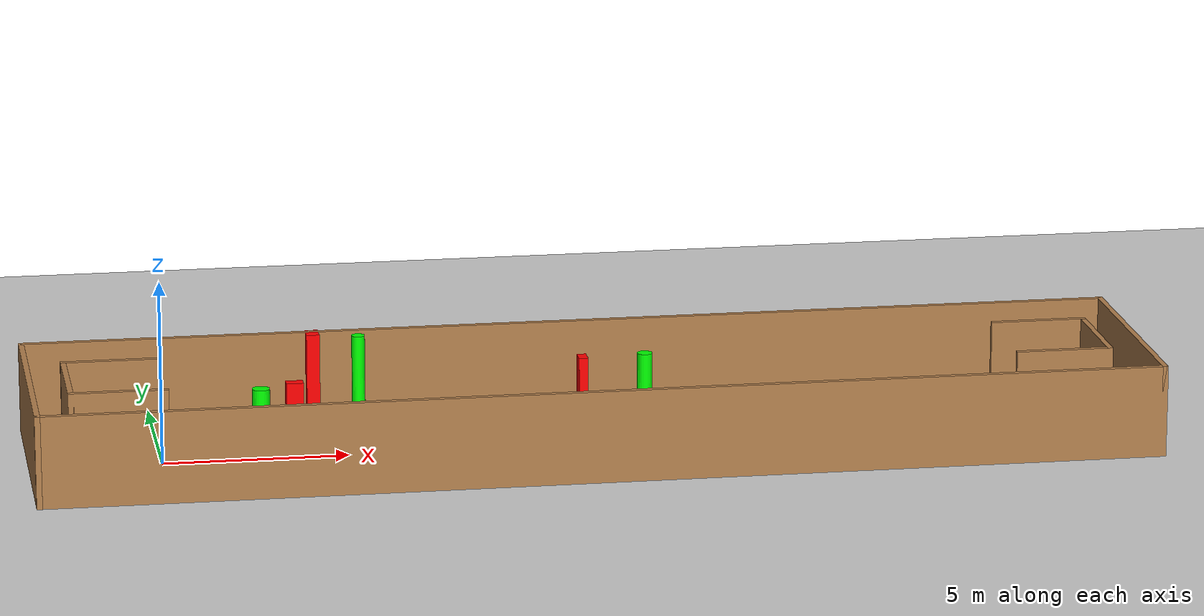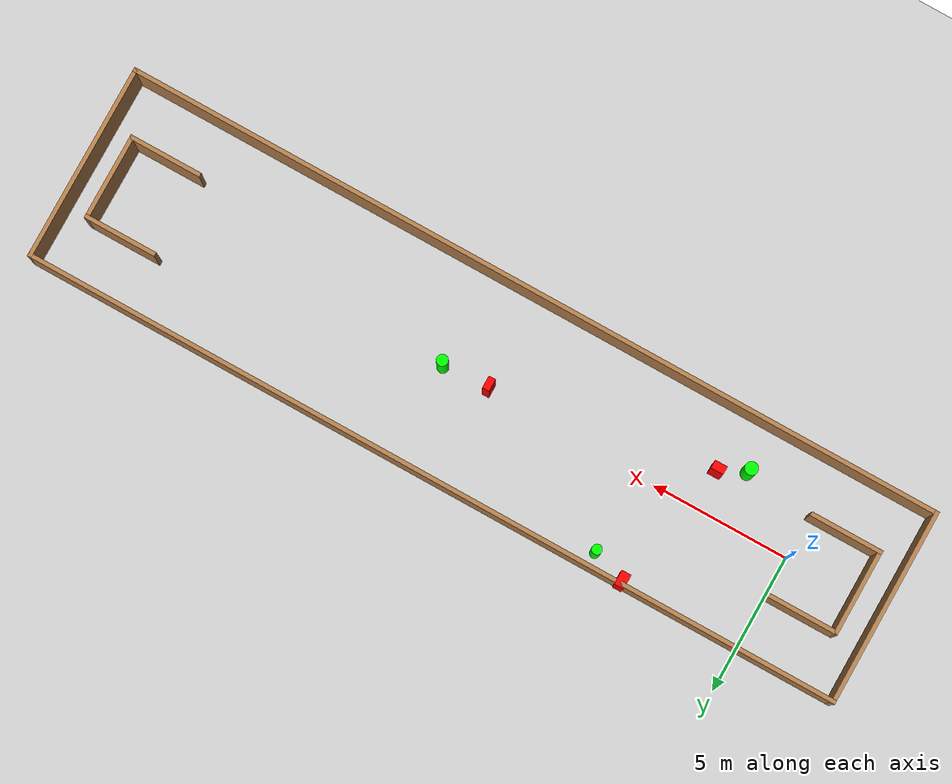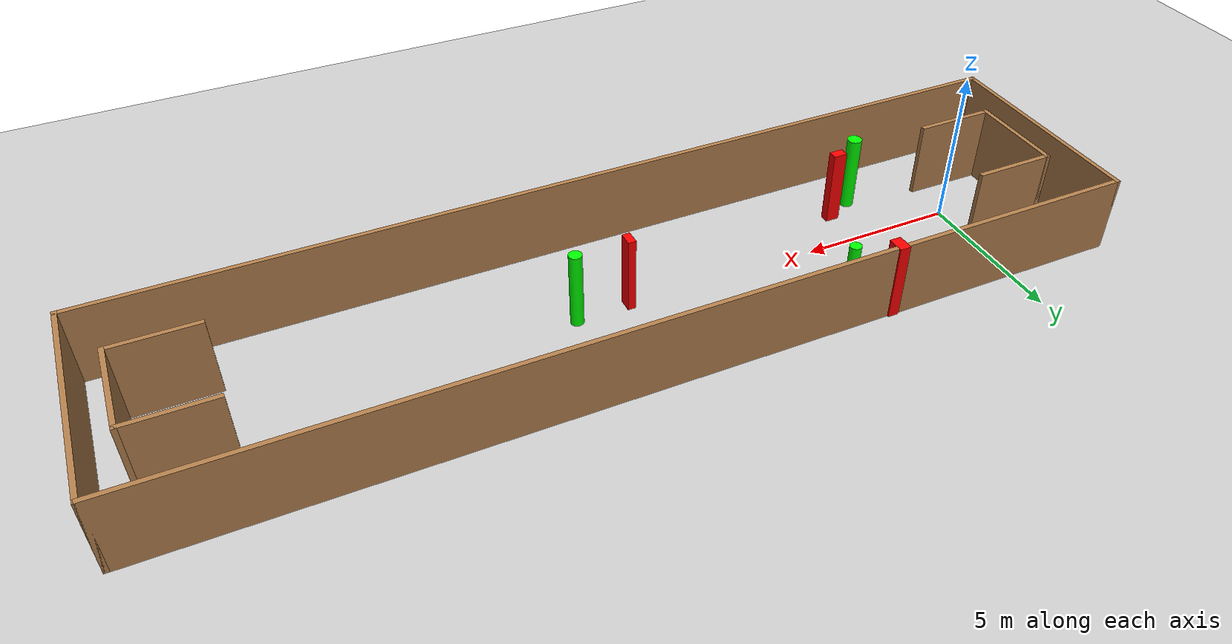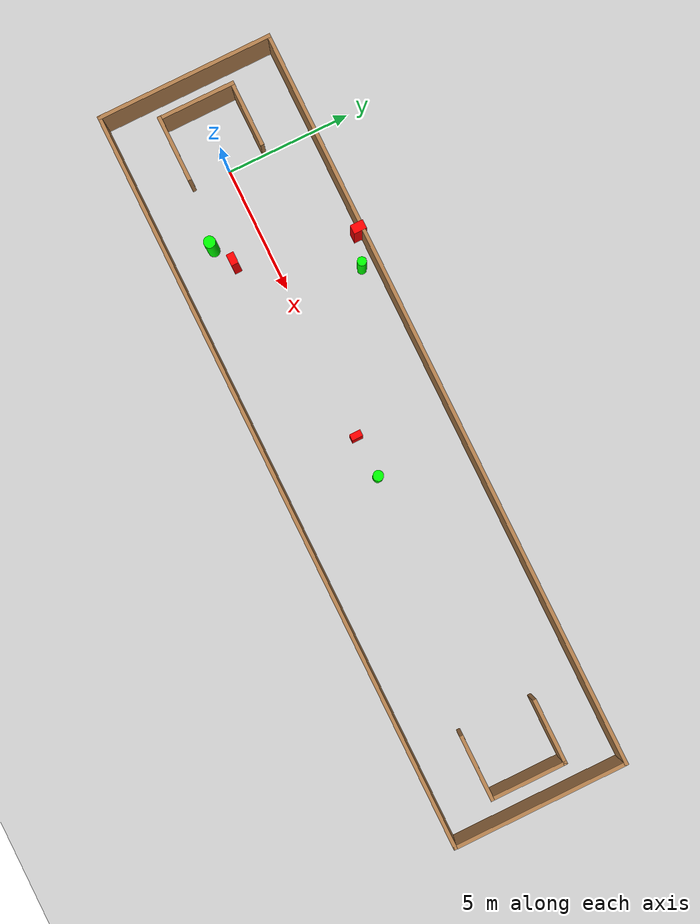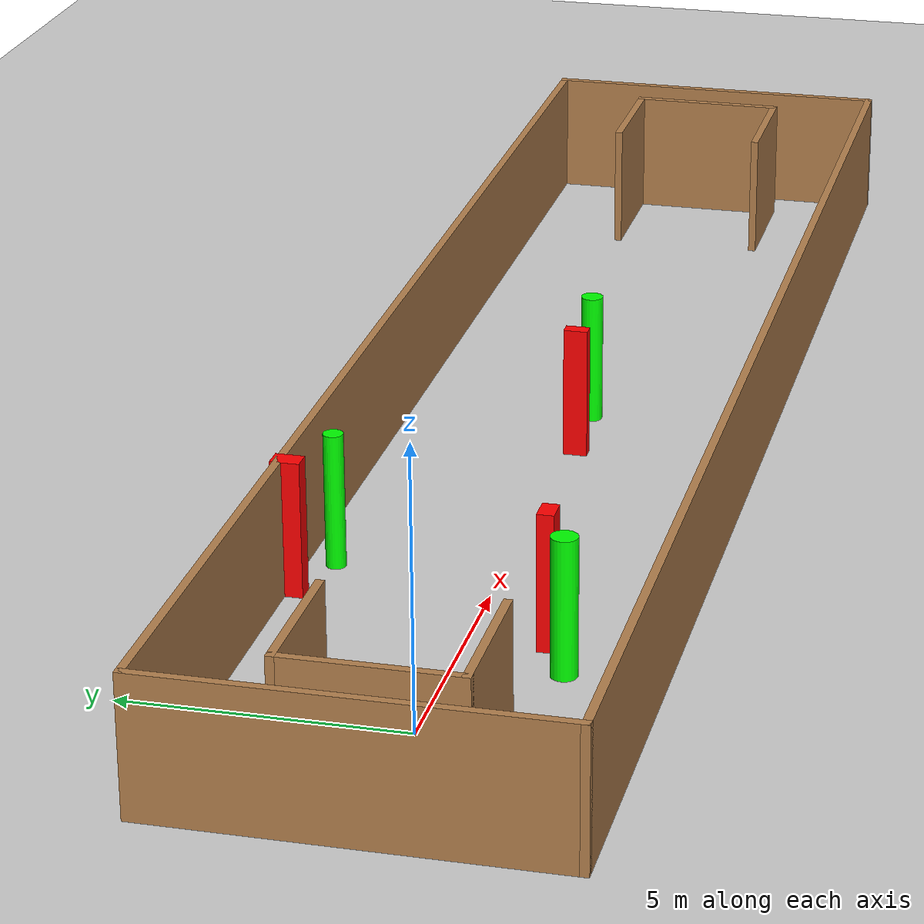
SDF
<sdf version="1.7">
 <world name="default">
  <light name="sun" type="directional">
   <pose>0 0 10 0 -0 0</pose>
   <diffuse>0.8 0.8 0.8 1</diffuse>
   <specular>0.2 0.2 0.2 1</specular>
   <attenuation>
    <range>1000</range>
    <constant>0.9</constant>
    <linear>0.01</linear>
    <quadratic>0.001</quadratic>
   </attenuation>
   <direction>-0.5 0.1 -0.9</direction>
   <spot><inner_angle>0</inner_angle><outer_angle>0</outer_angle><falloff>0</falloff></spot>
  </light>
  <model name="ground_plane">
   <static>1</static>
   <link name="link">
    <collision name="collision">
     <geometry><plane><normal>0 0 1</normal><size>100 100</size></plane></geometry>
     <surface>
      <contact><collide_bitmask>65535</collide_bitmask></contact>
      <friction><ode><mu>100</mu><mu2>50</mu2></ode></friction>
     </surface>
    </collision>
    <visual name="visual">
     <cast_shadows>0</cast_shadows>
     <geometry><plane><normal>0 0 1</normal><size>100 100</size></plane></geometry>
     <material>
      <script><uri>file://media/materials/scripts/gazebo.material</uri><name>Gazebo/Grey</name></script>
     </material>
    </visual>
   </link>
  </model>
  <gravity>0 0 -9.8</gravity>
  <magnetic_field>6e-06 2.3e-05 -4.2e-05</magnetic_field>
  <atmosphere type="adiabatic"/>
  <physics type="ode">
   <max_step_size>0.001</max_step_size>
   <real_time_factor>1</real_time_factor>
   <real_time_update_rate>1000</real_time_update_rate>
  </physics>
  <scene><ambient>0.4 0.4 0.4 1</ambient><background>0.7 0.7 0.7 1</background><shadows>1</shadows></scene>
  <spherical_coordinates>
   <surface_model>EARTH_WGS84</surface_model>
   <latitude_deg>0</latitude_deg>
   <longitude_deg>0</longitude_deg>
   <elevation>0</elevation>
   <heading_deg>0</heading_deg>
  </spherical_coordinates>
  <model name="my_base_walls">
   <link name="Wall_0">
    <collision name="Wall_0_Collision">
     <geometry><box><size>7.15 0.15 2.5</size></box></geometry>
     <pose>0 0 1.25 0 -0 0</pose>
    </collision>
    <visual name="Wall_0_Visual">
     <pose>0 0 1.25 0 -0 0</pose>
     <geometry><box><size>7.15 0.15 2.5</size></box></geometry>
     <material>
      <script><uri>file://media/materials/scripts/gazebo.material</uri><name>Gazebo/Wood</name></script>
      <ambient>1 1 1 1</ambient>
     </material>
     <meta><layer>0</layer></meta>
    </visual>
    <pose>-15 0 0 0 -0 1.5708</pose>
   </link>
   <link name="Wall_10">
    <collision name="Wall_10_Collision">
     <geometry><box><size>2.65 0.15 2.5</size></box></geometry>
     <pose>0 0 1.25 0 -0 0</pose>
    </collision>
    <visual name="Wall_10_Visual">
     <pose>0 0 1.25 0 -0 0</pose>
     <geometry><box><size>2.65 0.15 2.5</size></box></geometry>
     <material>
      <script><uri>file://media/materials/scripts/gazebo.material</uri><name>Gazebo/Wood</name></script>
      <ambient>1 1 1 1</ambient>
     </material>
     <meta><layer>0</layer></meta>
    </visual>
    <pose>-12.75 -1.5 0 0 -0 0</pose>
   </link>
   <link name="Wall_12">
    <collision name="Wall_12_Collision">
     <geometry><box><size>2.65 0.15 2.5</size></box></geometry>
     <pose>0 0 1.25 0 -0 0</pose>
    </collision>
    <visual name="Wall_12_Visual">
     <pose>0 0 1.25 0 -0 0</pose>
     <geometry><box><size>2.65 0.15 2.5</size></box></geometry>
     <material>
      <script><uri>file://media/materials/scripts/gazebo.material</uri><name>Gazebo/Wood</name></script>
      <ambient>1 1 1 1</ambient>
     </material>
     <meta><layer>0</layer></meta>
    </visual>
    <pose>-12.75 1.5 0 0 -0 0</pose>
   </link>
   <link name="Wall_14">
    <collision name="Wall_14_Collision">
     <geometry><box><size>3.15 0.15 2.5</size></box></geometry>
     <pose>0 0 1.25 0 -0 0</pose>
    </collision>
    <visual name="Wall_14_Visual">
     <pose>0 0 1.25 0 -0 0</pose>
     <geometry><box><size>3.15 0.15 2.5</size></box></geometry>
     <material>
      <script><uri>file://media/materials/scripts/gazebo.material</uri><name>Gazebo/Wood</name></script>
      <ambient>1 1 1 1</ambient>
     </material>
     <meta><layer>0</layer></meta>
    </visual>
    <pose>14 0 0 0 -0 -1.5708</pose>
   </link>
   <link name="Wall_15">
    <collision name="Wall_15_Collision">
     <geometry><box><size>2.65 0.15 2.5</size></box></geometry>
     <pose>0 0 1.25 0 -0 0</pose>
    </collision>
    <visual name="Wall_15_Visual">
     <pose>0 0 1.25 0 -0 0</pose>
     <geometry><box><size>2.65 0.15 2.5</size></box></geometry>
     <material>
      <script><uri>file://media/materials/scripts/gazebo.material</uri><name>Gazebo/Wood</name></script>
      <ambient>1 1 1 1</ambient>
     </material>
     <meta><layer>0</layer></meta>
    </visual>
    <pose>12.75 -1.5 0 0 -0 3.14159</pose>
   </link>
   <link name="Wall_17">
    <collision name="Wall_17_Collision">
     <geometry><box><size>2.65 0.15 2.5</size></box></geometry>
     <pose>0 0 1.25 0 -0 0</pose>
    </collision>
    <visual name="Wall_17_Visual">
     <pose>0 0 1.25 0 -0 0</pose>
     <geometry><box><size>2.65 0.15 2.5</size></box></geometry>
     <material>
      <script><uri>file://media/materials/scripts/gazebo.material</uri><name>Gazebo/Wood</name></script>
      <ambient>1 1 1 1</ambient>
     </material>
     <meta><layer>0</layer></meta>
    </visual>
    <pose>12.75 1.5 0 0 -0 3.14159</pose>
   </link>
   <link name="Wall_2">
    <collision name="Wall_2_Collision">
     <geometry><box><size>30.15 0.15 2.5</size></box></geometry>
     <pose>0 0 1.25 0 -0 0</pose>
    </collision>
    <visual name="Wall_2_Visual">
     <pose>0 0 1.25 0 -0 0</pose>
     <geometry><box><size>30.15 0.15 2.5</size></box></geometry>
     <material>
      <script><uri>file://media/materials/scripts/gazebo.material</uri><name>Gazebo/Wood</name></script>
      <ambient>1 1 1 1</ambient>
     </material>
     <meta><layer>0</layer></meta>
    </visual>
    <pose>-0 -3.5 0 0 -0 0</pose>
   </link>
   <link name="Wall_4">
    <collision name="Wall_4_Collision">
     <geometry><box><size>30.15 0.15 2.5</size></box></geometry>
     <pose>0 0 1.25 0 -0 0</pose>
    </collision>
    <visual name="Wall_4_Visual">
     <pose>0 0 1.25 0 -0 0</pose>
     <geometry><box><size>30.15 0.15 2.5</size></box></geometry>
     <material>
      <script><uri>file://media/materials/scripts/gazebo.material</uri><name>Gazebo/Wood</name></script>
      <ambient>1 1 1 1</ambient>
     </material>
     <meta><layer>0</layer></meta>
    </visual>
    <pose>-0 3.5 0 0 -0 0</pose>
   </link>
   <link name="Wall_6">
    <collision name="Wall_6_Collision">
     <geometry><box><size>7.15 0.15 2.5</size></box></geometry>
     <pose>0 0 1.25 0 -0 0</pose>
    </collision>
    <visual name="Wall_6_Visual">
     <pose>0 0 1.25 0 -0 0</pose>
     <geometry><box><size>7.15 0.15 2.5</size></box></geometry>
     <material>
      <script><uri>file://media/materials/scripts/gazebo.material</uri><name>Gazebo/Wood</name></script>
      <ambient>1 1 1 1</ambient>
     </material>
     <meta><layer>0</layer></meta>
    </visual>
    <pose>15 0 0 0 -0 -1.5708</pose>
   </link>
   <link name="Wall_9">
    <collision name="Wall_9_Collision">
     <geometry><box><size>3.15 0.15 2.5</size></box></geometry>
     <pose>0 0 1.25 0 -0 0</pose>
    </collision>
    <visual name="Wall_9_Visual">
     <pose>0 0 1.25 0 -0 0</pose>
     <geometry><box><size>3.15 0.15 2.5</size></box></geometry>
     <material>
      <script><uri>file://media/materials/scripts/gazebo.material</uri><name>Gazebo/Wood</name></script>
      <ambient>1 1 1 1</ambient>
     </material>
     <meta><layer>0</layer></meta>
    </visual>
    <pose>-14 0 0 0 -0 -1.5708</pose>
   </link>
   <static>1</static>
   <pose>11.5 0 0 0 -0 0</pose>
  </model>
  <model name="cylinder1">
   <static>1</static>
   <link name="link">
    <inertial>
     <mass>1</mass>
     <inertia><ixx>0.5</ixx><ixy>0</ixy><ixz>0</ixz><iyy>0.5</iyy><iyz>0</iyz><izz>1</izz></inertia>
    </inertial>
    <collision name="collision">
     <geometry><cylinder><radius>0.23324532618084517</radius><length>2.5</length></cylinder></geometry>
    </collision>
    <visual name="visual">
     <geometry><cylinder><radius>0.23324532618084517</radius><length>2.5</length></cylinder></geometry>
     <material>
      <ambient>0 1 0 1</ambient>
      <diffuse>0 1 0 1</diffuse>
      <specular>0.1 0.1 0.1 1</specular>
      <emissive>0 0 0 0</emissive>
     </material>
    </visual>
   </link>
   <pose>2.4737369206111985 -1.8463153258388796 1.25 0 0 0</pose>
  </model>
  <model name="cylinder2">
   <static>1</static>
   <link name="link">
    <inertial>
     <mass>1</mass>
     <inertia><ixx>0.5</ixx><ixy>0</ixy><ixz>0</ixz><iyy>0.5</iyy><iyz>0</iyz><izz>1</izz></inertia>
    </inertial>
    <collision name="collision">
     <geometry><cylinder><radius>0.17997041156695892</radius><length>2.5</length></cylinder></geometry>
    </collision>
    <visual name="visual">
     <geometry><cylinder><radius>0.17997041156695892</radius><length>2.5</length></cylinder></geometry>
     <material>
      <ambient>0 1 0 1</ambient>
      <diffuse>0 1 0 1</diffuse>
      <specular>0.1 0.1 0.1 1</specular>
      <emissive>0 0 0 0</emissive>
     </material>
    </visual>
   </link>
   <pose>5.6037294314406 2.917062806233184 1.25 0 0 0</pose>
  </model>
  <model name="cylinder3">
   <static>1</static>
   <link name="link">
    <inertial>
     <mass>1</mass>
     <inertia><ixx>0.5</ixx><ixy>0</ixy><ixz>0</ixz><iyy>0.5</iyy><iyz>0</iyz><izz>1</izz></inertia>
    </inertial>
    <collision name="collision">
     <geometry><cylinder><radius>0.2064291944821604</radius><length>2.5</length></cylinder></geometry>
    </collision>
    <visual name="visual">
     <geometry><cylinder><radius>0.2064291944821604</radius><length>2.5</length></cylinder></geometry>
     <material>
      <ambient>0 1 0 1</ambient>
      <diffuse>0 1 0 1</diffuse>
      <specular>0.1 0.1 0.1 1</specular>
      <emissive>0 0 0 0</emissive>
     </material>
    </visual>
   </link>
   <pose>13.015025994867552 -0.03483221296699668 1.25 0 0 0</pose>
  </model>
  <model name="box1">
   <static>1</static>
   <link name="link">
    <inertial>
     <mass>1</mass>
     <inertia><ixx>0.083</ixx><ixy>0</ixy><ixz>0</ixz><iyy>0.083</iyy><iyz>0</iyz><izz>0.083</izz></inertia>
    </inertial>
    <collision name="collision">
     <geometry><box><size>0.2502309382076934 0.4484166738182288 2.5</size></box></geometry>
    </collision>
    <visual name="visual">
     <geometry><box><size>0.2502309382076934 0.4484166738182288 2.5</size></box></geometry>
     <material>
      <ambient>1 0 0 1</ambient>
      <diffuse>1 0 0 1</diffuse>
      <specular>0.1 0.1 0.1 1</specular>
      <emissive>0 0 0 0</emissive>
     </material>
    </visual>
    <sensor name="my_contact" type="contact">
     <contact><collision>box_collision</collision><topic>__default_topic__</topic></contact>
    </sensor>
   </link>
   <pose>11.307835134923039 -0.1088910832267449 1.25 0 0 0</pose>
  </model>
  <model name="box2">
   <static>1</static>
   <link name="link">
    <inertial>
     <mass>1</mass>
     <inertia><ixx>0.083</ixx><ixy>0</ixy><ixz>0</ixz><iyy>0.083</iyy><iyz>0</iyz><izz>0.083</izz></inertia>
    </inertial>
    <collision name="collision">
     <geometry><box><size>0.45668620022199435 0.2975624588985674 2.5</size></box></geometry>
    </collision>
    <visual name="visual">
     <geometry><box><size>0.45668620022199435 0.2975624588985674 2.5</size></box></geometry>
     <material>
      <ambient>1 0 0 1</ambient>
      <diffuse>1 0 0 1</diffuse>
      <specular>0.1 0.1 0.1 1</specular>
      <emissive>0 0 0 0</emissive>
     </material>
    </visual>
    <sensor name="my_contact" type="contact">
     <contact><collision>box_collision</collision><topic>__default_topic__</topic></contact>
    </sensor>
   </link>
   <pose>3.40957998172785 -1.3653480610168458 1.25 0 0 0</pose>
  </model>
  <model name="box3">
   <static>1</static>
   <link name="link">
    <inertial>
     <mass>1</mass>
     <inertia><ixx>0.083</ixx><ixy>0</ixy><ixz>0</ixz><iyy>0.083</iyy><iyz>0</iyz><izz>0.083</izz></inertia>
    </inertial>
    <collision name="collision">
     <geometry><box><size>0.3561522311100228 0.5182113774950572 2.5</size></box></geometry>
    </collision>
    <visual name="visual">
     <geometry><box><size>0.3561522311100228 0.5182113774950572 2.5</size></box></geometry>
     <material>
      <ambient>1 0 0 1</ambient>
      <diffuse>1 0 0 1</diffuse>
      <specular>0.1 0.1 0.1 1</specular>
      <emissive>0 0 0 0</emissive>
     </material>
    </visual>
    <sensor name="my_contact" type="contact">
     <contact><collision>box_collision</collision><topic>__default_topic__</topic></contact>
    </sensor>
   </link>
   <pose>4.392009736833986 3.36493711329482 1.25 0 0 0</pose>
  </model>
 </world>
</sdf>
